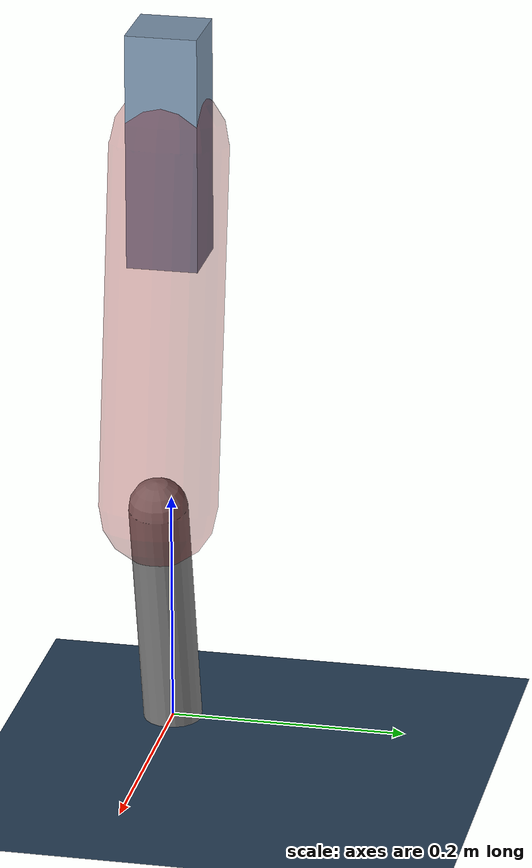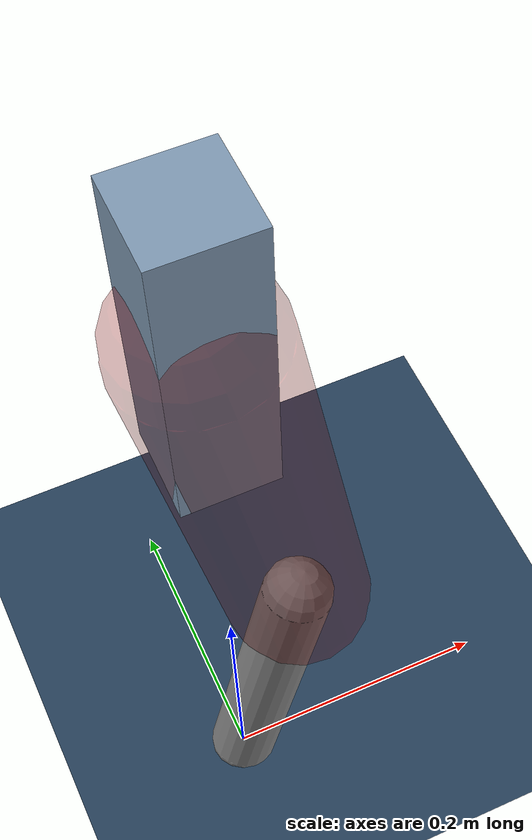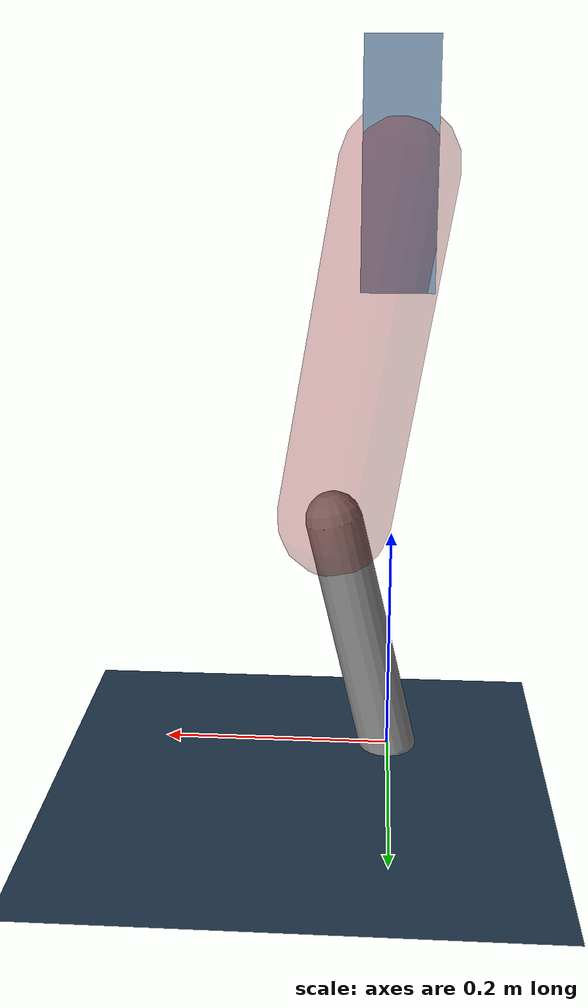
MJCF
<mujoco model="Hopper2D">
	<compiler inertiafromgeom="true" angle="radian" />
	<option timestep="0.001" integrator="implicit" cone="elliptic" solver="Newton" tolerance="1e-10" />

	<default>
		<geom contype="1" conaffinity="1" condim="3" friction="2 0.005 0.0001" solref="0.005 1" />
		<joint limited="true" damping="0.1" />
	</default>

	<asset>
		<texture name="skybox" type="skybox" builtin="gradient" rgb1=".4 .6 .8" rgb2="0 0 0" width="800" height="800" />
		<texture name="grid" type="2d" builtin="checker" rgb1=".1 .2 .3" rgb2=".2 .3 .4" width="300" height="300" mark="edge" markrgb=".2 .3 .4" />
		<material name="ground" texture="grid" texrepeat="1 1" texuniform="true" reflectance="0.1" />
		<material name="leg" rgba="0.5 0.6 0.7 1" />
	</asset>

	<worldbody>

		<geom name="floor" type="plane" size="5 5 0.25" material="ground" />

		<light directional="false" diffuse="0.8 0.8 0.8" specular="0.3 0.3 0.3" pos="0 0 2" dir="0 0 -1" />
		<light mode="targetbodycom" target="base" directional="false" diffuse="0.8 0.8 0.8" specular="0.3 0.3 0.3" pos="0 0 2" dir="0 0 -1" />

		<camera name="fixed" pos="0 -2 1" xyaxes="1 0 0 0 0 1" />
		<camera name="tracking" mode="trackcom" pos="0 -3 1" />

		<body name="root" pos="0 0 0.5141096573489644">
			<joint name="slide_x" type="slide" axis="1 0 0" range="-100 100" />
			<joint name="slide_z" type="slide" axis="0 0 1" range="0 10" />

			<body name="base" pos="0 0 0">
				<geom name="torso" type="box" size="0.03 0.03 0.1" mass="2.4530000000000003" material="leg" />

				<body name="link1" pos="0 0 0" euler="0 1.4062693372432227 0">
					<joint type="hinge" axis="0 -1 0" pos="0 0 0" name="hinge1" limited="true" range="-3.14 3.14" stiffness="0" damping="0.1" />
					<geom name="thigh" type="capsule" fromto="0 0 0 0.30639371626447753 0 0" size="0.05" rgba="0.5 0 0 0.3" mass="1.0060630339140892" />

					<body name="link2" pos="0.30639371626447753 0 0" euler="0 0.3971156122899513 0">
						<joint type="hinge" axis="0 -1 0" pos="0 0 0" name="hinge2" limited="true" range="-3.14 3.14" stiffness="0" damping="0.1" />
						<geom name="shank" type="capsule" fromto="0 0 0 0.21771594108448689 0 0" size="0.025" mass="0.4157727528675895" />

					</body>
				</body>
			</body>
		</body>
	</worldbody>

	<actuator>
		<motor name="torque1" joint="hinge1" ctrlrange="-86.67225483370059 86.67225483370059" ctrllimited="true" gear="1" />
		<motor name="torque2" joint="hinge2" ctrlrange="-101.68572509072528 101.68572509072528" ctrllimited="true" gear="1" />
	</actuator>
</mujoco>
